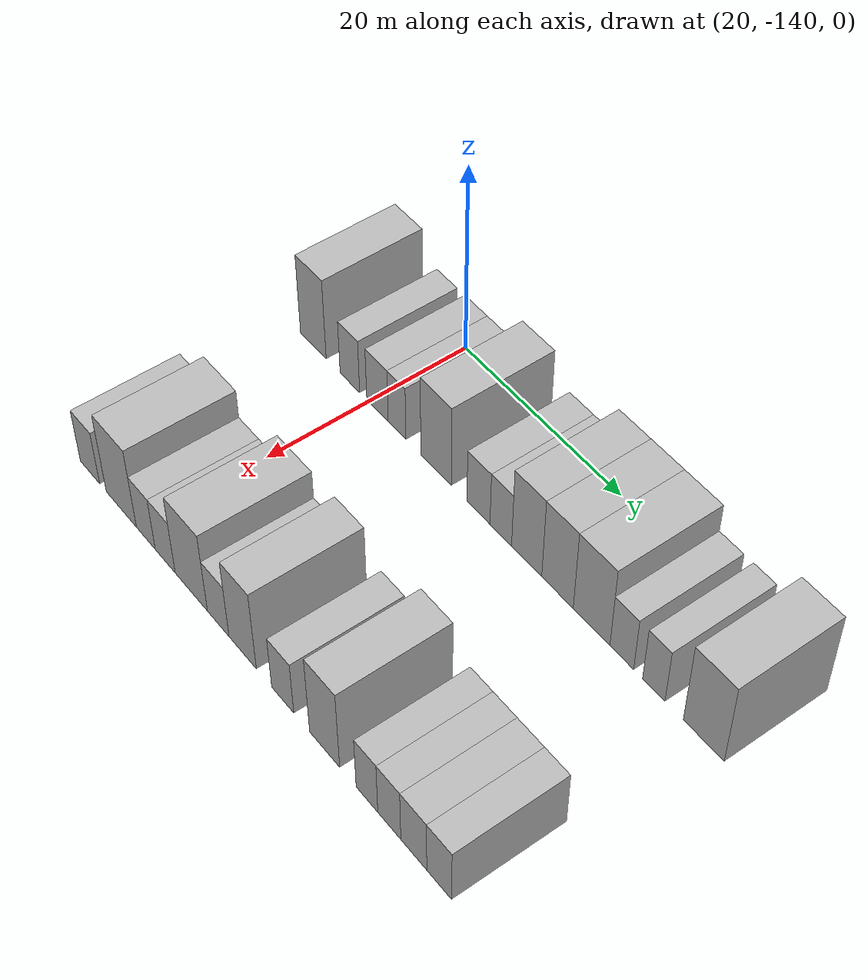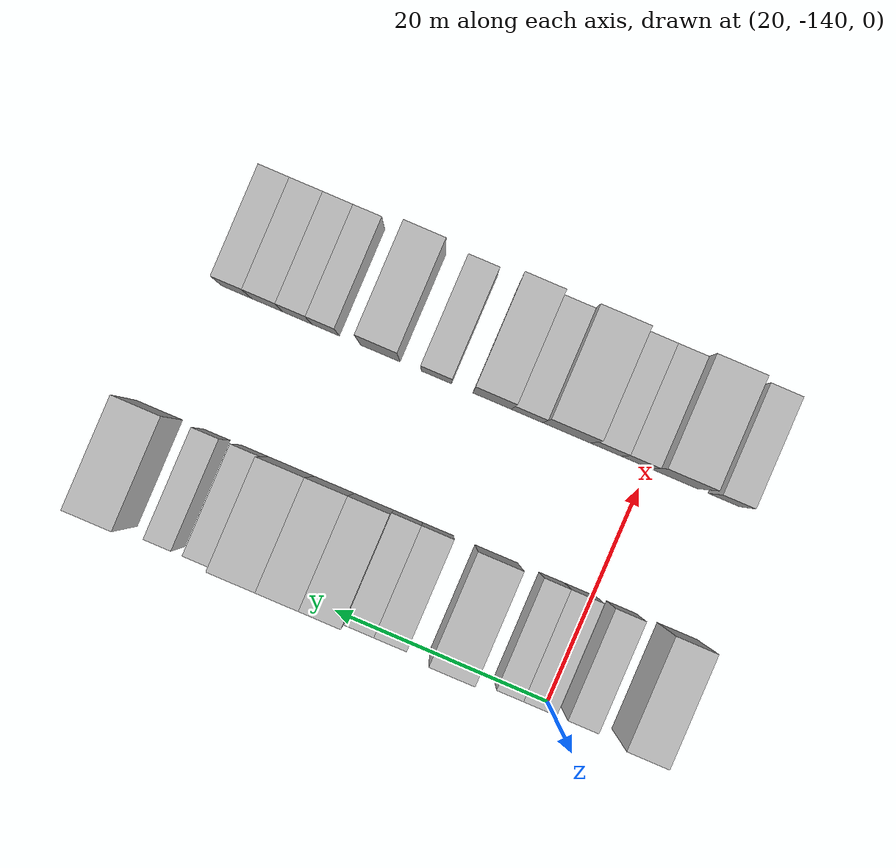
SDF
<sdf version="1.6">
 <world name="default">
  <model name="building_16">
   <static>1</static>
   <pose>25.0000 -147.8683 0 0.000000 0.000000 0.000000</pose>
   <link name="link">
    <pose>0 0 4.50 0 0 0</pose>
    <collision name="collision"><geometry><box><size>10.0000 3.7314 9.0000</size></box></geometry></collision>
    <visual name="visual">
     <cast_shadows>0</cast_shadows>
     <geometry><box><size>10.0000 3.7314 9.0000</size></box></geometry>
     <material>
      <script>
       <uri>model://HANNAS_wall/materials/scripts</uri>
       <uri>model://HANNAS_wall/materials/textures</uri>
       <name>vrc/HANNAS_wall</name>
      </script>
     </material>
    </visual>
   </link>
  </model>
  <model name="building_17">
   <static>1</static>
   <pose>25.0000 -142.6221 0 0.000000 0.000000 0.000000</pose>
   <link name="link">
    <pose>0 0 3.00 0 0 0</pose>
    <collision name="collision"><geometry><box><size>10.0000 2.7608 6.0000</size></box></geometry></collision>
    <visual name="visual">
     <cast_shadows>0</cast_shadows>
     <geometry><box><size>10.0000 2.7608 6.0000</size></box></geometry>
     <material>
      <script>
       <uri>model://HANNAS_wall/materials/scripts</uri>
       <uri>model://HANNAS_wall/materials/textures</uri>
       <name>vrc/HANNAS_wall</name>
      </script>
     </material>
    </visual>
   </link>
  </model>
  <model name="building_18">
   <static>1</static>
   <pose>25.0000 -138.7657 0 0.000000 0.000000 0.000000</pose>
   <link name="link">
    <pose>0 0 3.00 0 0 0</pose>
    <collision name="collision"><geometry><box><size>10.0000 2.9520 6.0000</size></box></geometry></collision>
    <visual name="visual">
     <cast_shadows>0</cast_shadows>
     <geometry><box><size>10.0000 2.9520 6.0000</size></box></geometry>
     <material>
      <script>
       <uri>model://HANNAS_wall/materials/scripts</uri>
       <uri>model://HANNAS_wall/materials/textures</uri>
       <name>vrc/HANNAS_wall</name>
      </script>
     </material>
    </visual>
   </link>
  </model>
  <model name="building_19">
   <static>1</static>
   <pose>25.0000 -136.0867 0 0.000000 0.000000 0.000000</pose>
   <link name="link">
    <pose>0 0 3.00 0 0 0</pose>
    <collision name="collision"><geometry><box><size>10.0000 2.4060 6.0000</size></box></geometry></collision>
    <visual name="visual">
     <cast_shadows>0</cast_shadows>
     <geometry><box><size>10.0000 2.4060 6.0000</size></box></geometry>
     <material>
      <script>
       <uri>model://HANNAS_wall/materials/scripts</uri>
       <uri>model://HANNAS_wall/materials/textures</uri>
       <name>vrc/HANNAS_wall</name>
      </script>
     </material>
    </visual>
   </link>
  </model>
  <model name="building_20">
   <static>1</static>
   <pose>25.0000 -130.8775 0 0.000000 0.000000 0.000000</pose>
   <link name="link">
    <pose>0 0 4.50 0 0 0</pose>
    <collision name="collision"><geometry><box><size>10.0000 4.0125 9.0000</size></box></geometry></collision>
    <visual name="visual">
     <cast_shadows>0</cast_shadows>
     <geometry><box><size>10.0000 4.0125 9.0000</size></box></geometry>
     <material>
      <script>
       <uri>model://HANNAS_wall/materials/scripts</uri>
       <uri>model://HANNAS_wall/materials/textures</uri>
       <name>vrc/HANNAS_wall</name>
      </script>
     </material>
    </visual>
   </link>
  </model>
  <model name="building_21">
   <static>1</static>
   <pose>25.0000 -125.4084 0 0.000000 0.000000 0.000000</pose>
   <link name="link">
    <pose>0 0 3.00 0 0 0</pose>
    <collision name="collision"><geometry><box><size>10.0000 2.9255 6.0000</size></box></geometry></collision>
    <visual name="visual">
     <cast_shadows>0</cast_shadows>
     <geometry><box><size>10.0000 2.9255 6.0000</size></box></geometry>
     <material>
      <script>
       <uri>model://HANNAS_wall/materials/scripts</uri>
       <uri>model://HANNAS_wall/materials/textures</uri>
       <name>vrc/HANNAS_wall</name>
      </script>
     </material>
    </visual>
   </link>
  </model>
  <model name="building_22">
   <static>1</static>
   <pose>25.0000 -122.5982 0 0.000000 0.000000 0.000000</pose>
   <link name="link">
    <pose>0 0 3.00 0 0 0</pose>
    <collision name="collision"><geometry><box><size>10.0000 2.6951 6.0000</size></box></geometry></collision>
    <visual name="visual">
     <cast_shadows>0</cast_shadows>
     <geometry><box><size>10.0000 2.6951 6.0000</size></box></geometry>
     <material>
      <script>
       <uri>model://HANNAS_wall/materials/scripts</uri>
       <uri>model://HANNAS_wall/materials/textures</uri>
       <name>vrc/HANNAS_wall</name>
      </script>
     </material>
    </visual>
   </link>
  </model>
  <model name="building_23">
   <static>1</static>
   <pose>25.0000 -119.4095 0 0.000000 0.000000 0.000000</pose>
   <link name="link">
    <pose>0 0 4.50 0 0 0</pose>
    <collision name="collision"><geometry><box><size>10.0000 3.6823 9.0000</size></box></geometry></collision>
    <visual name="visual">
     <cast_shadows>0</cast_shadows>
     <geometry><box><size>10.0000 3.6823 9.0000</size></box></geometry>
     <material>
      <script>
       <uri>model://HANNAS_wall/materials/scripts</uri>
       <uri>model://HANNAS_wall/materials/textures</uri>
       <name>vrc/HANNAS_wall</name>
      </script>
     </material>
    </visual>
   </link>
  </model>
  <model name="building_24">
   <static>1</static>
   <pose>25.0000 -115.6903 0 0.000000 0.000000 0.000000</pose>
   <link name="link">
    <pose>0 0 4.50 0 0 0</pose>
    <collision name="collision"><geometry><box><size>10.0000 3.7561 9.0000</size></box></geometry></collision>
    <visual name="visual">
     <cast_shadows>0</cast_shadows>
     <geometry><box><size>10.0000 3.7561 9.0000</size></box></geometry>
     <material>
      <script>
       <uri>model://HANNAS_wall/materials/scripts</uri>
       <uri>model://HANNAS_wall/materials/textures</uri>
       <name>vrc/HANNAS_wall</name>
      </script>
     </material>
    </visual>
   </link>
  </model>
  <model name="building_25">
   <static>1</static>
   <pose>25.0000 -111.6862 0 0.000000 0.000000 0.000000</pose>
   <link name="link">
    <pose>0 0 4.50 0 0 0</pose>
    <collision name="collision"><geometry><box><size>10.0000 4.2523 9.0000</size></box></geometry></collision>
    <visual name="visual">
     <cast_shadows>0</cast_shadows>
     <geometry><box><size>10.0000 4.2523 9.0000</size></box></geometry>
     <material>
      <script>
       <uri>model://HANNAS_wall/materials/scripts</uri>
       <uri>model://HANNAS_wall/materials/textures</uri>
       <name>vrc/HANNAS_wall</name>
      </script>
     </material>
    </visual>
   </link>
  </model>
  <model name="building_26">
   <static>1</static>
   <pose>25.0000 -108.2138 0 0.000000 0.000000 0.000000</pose>
   <link name="link">
    <pose>0 0 3.00 0 0 0</pose>
    <collision name="collision"><geometry><box><size>10.0000 2.6924 6.0000</size></box></geometry></collision>
    <visual name="visual">
     <cast_shadows>0</cast_shadows>
     <geometry><box><size>10.0000 2.6924 6.0000</size></box></geometry>
     <material>
      <script>
       <uri>model://HANNAS_wall/materials/scripts</uri>
       <uri>model://HANNAS_wall/materials/textures</uri>
       <name>vrc/HANNAS_wall</name>
      </script>
     </material>
    </visual>
   </link>
  </model>
  <model name="building_27">
   <static>1</static>
   <pose>25.0000 -104.6309 0 0.000000 0.000000 0.000000</pose>
   <link name="link">
    <pose>0 0 3.00 0 0 0</pose>
    <collision name="collision"><geometry><box><size>10.0000 2.4735 6.0000</size></box></geometry></collision>
    <visual name="visual">
     <cast_shadows>0</cast_shadows>
     <geometry><box><size>10.0000 2.4735 6.0000</size></box></geometry>
     <material>
      <script>
       <uri>model://HANNAS_wall/materials/scripts</uri>
       <uri>model://HANNAS_wall/materials/textures</uri>
       <name>vrc/HANNAS_wall</name>
      </script>
     </material>
    </visual>
   </link>
  </model>
  <model name="building_28">
   <static>1</static>
   <pose>25.0000 -99.2087 0 0.000000 0.000000 0.000000</pose>
   <link name="link">
    <pose>0 0 4.50 0 0 0</pose>
    <collision name="collision"><geometry><box><size>10.0000 4.3710 9.0000</size></box></geometry></collision>
    <visual name="visual">
     <cast_shadows>0</cast_shadows>
     <geometry><box><size>10.0000 4.3710 9.0000</size></box></geometry>
     <material>
      <script>
       <uri>model://HANNAS_wall/materials/scripts</uri>
       <uri>model://HANNAS_wall/materials/textures</uri>
       <name>vrc/HANNAS_wall</name>
      </script>
     </material>
    </visual>
   </link>
  </model>
  <model name="building_117">
   <static>1</static>
   <pose>47.0000 -147.1453 0 0.000000 0.000000 0.000000</pose>
   <link name="link">
    <pose>0 0 3.00 0 0 0</pose>
    <collision name="collision"><geometry><box><size>10.0000 2.9470 6.0000</size></box></geometry></collision>
    <visual name="visual">
     <cast_shadows>0</cast_shadows>
     <geometry><box><size>10.0000 2.9470 6.0000</size></box></geometry>
     <material>
      <script>
       <uri>model://HANNAS_wall/materials/scripts</uri>
       <uri>model://HANNAS_wall/materials/textures</uri>
       <name>vrc/HANNAS_wall</name>
      </script>
     </material>
    </visual>
   </link>
  </model>
  <model name="building_118">
   <static>1</static>
   <pose>47.0000 -142.4270 0 0.000000 0.000000 0.000000</pose>
   <link name="link">
    <pose>0 0 4.50 0 0 0</pose>
    <collision name="collision"><geometry><box><size>10.0000 4.4896 9.0000</size></box></geometry></collision>
    <visual name="visual">
     <cast_shadows>0</cast_shadows>
     <geometry><box><size>10.0000 4.4896 9.0000</size></box></geometry>
     <material>
      <script>
       <uri>model://HANNAS_wall/materials/scripts</uri>
       <uri>model://HANNAS_wall/materials/textures</uri>
       <name>vrc/HANNAS_wall</name>
      </script>
     </material>
    </visual>
   </link>
  </model>
  <model name="building_119">
   <static>1</static>
   <pose>47.0000 -138.8107 0 0.000000 0.000000 0.000000</pose>
   <link name="link">
    <pose>0 0 3.00 0 0 0</pose>
    <collision name="collision"><geometry><box><size>10.0000 2.7430 6.0000</size></box></geometry></collision>
    <visual name="visual">
     <cast_shadows>0</cast_shadows>
     <geometry><box><size>10.0000 2.7430 6.0000</size></box></geometry>
     <material>
      <script>
       <uri>model://HANNAS_wall/materials/scripts</uri>
       <uri>model://HANNAS_wall/materials/textures</uri>
       <name>vrc/HANNAS_wall</name>
      </script>
     </material>
    </visual>
   </link>
  </model>
  <model name="building_120">
   <static>1</static>
   <pose>47.0000 -136.0185 0 0.000000 0.000000 0.000000</pose>
   <link name="link">
    <pose>0 0 3.00 0 0 0</pose>
    <collision name="collision"><geometry><box><size>10.0000 2.8412 6.0000</size></box></geometry></collision>
    <visual name="visual">
     <cast_shadows>0</cast_shadows>
     <geometry><box><size>10.0000 2.8412 6.0000</size></box></geometry>
     <material>
      <script>
       <uri>model://HANNAS_wall/materials/scripts</uri>
       <uri>model://HANNAS_wall/materials/textures</uri>
       <name>vrc/HANNAS_wall</name>
      </script>
     </material>
    </visual>
   </link>
  </model>
  <model name="building_121">
   <static>1</static>
   <pose>47.0000 -132.3555 0 0.000000 0.000000 0.000000</pose>
   <link name="link">
    <pose>0 0 4.50 0 0 0</pose>
    <collision name="collision"><geometry><box><size>10.0000 4.4849 9.0000</size></box></geometry></collision>
    <visual name="visual">
     <cast_shadows>0</cast_shadows>
     <geometry><box><size>10.0000 4.4849 9.0000</size></box></geometry>
     <material>
      <script>
       <uri>model://HANNAS_wall/materials/scripts</uri>
       <uri>model://HANNAS_wall/materials/textures</uri>
       <name>vrc/HANNAS_wall</name>
      </script>
     </material>
    </visual>
   </link>
  </model>
  <model name="building_122">
   <static>1</static>
   <pose>47.0000 -128.6467 0 0.000000 0.000000 0.000000</pose>
   <link name="link">
    <pose>0 0 3.00 0 0 0</pose>
    <collision name="collision"><geometry><box><size>10.0000 2.9327 6.0000</size></box></geometry></collision>
    <visual name="visual">
     <cast_shadows>0</cast_shadows>
     <geometry><box><size>10.0000 2.9327 6.0000</size></box></geometry>
     <material>
      <script>
       <uri>model://HANNAS_wall/materials/scripts</uri>
       <uri>model://HANNAS_wall/materials/textures</uri>
       <name>vrc/HANNAS_wall</name>
      </script>
     </material>
    </visual>
   </link>
  </model>
  <model name="building_123">
   <static>1</static>
   <pose>47.0000 -125.3660 0 0.000000 0.000000 0.000000</pose>
   <link name="link">
    <pose>0 0 4.50 0 0 0</pose>
    <collision name="collision"><geometry><box><size>10.0000 3.6287 9.0000</size></box></geometry></collision>
    <visual name="visual">
     <cast_shadows>0</cast_shadows>
     <geometry><box><size>10.0000 3.6287 9.0000</size></box></geometry>
     <material>
      <script>
       <uri>model://HANNAS_wall/materials/scripts</uri>
       <uri>model://HANNAS_wall/materials/textures</uri>
       <name>vrc/HANNAS_wall</name>
      </script>
     </material>
    </visual>
   </link>
  </model>
  <model name="building_124">
   <static>1</static>
   <pose>47.0000 -120.1359 0 0.000000 0.000000 0.000000</pose>
   <link name="link">
    <pose>0 0 3.00 0 0 0</pose>
    <collision name="collision"><geometry><box><size>10.0000 2.8315 6.0000</size></box></geometry></collision>
    <visual name="visual">
     <cast_shadows>0</cast_shadows>
     <geometry><box><size>10.0000 2.8315 6.0000</size></box></geometry>
     <material>
      <script>
       <uri>model://HANNAS_wall/materials/scripts</uri>
       <uri>model://HANNAS_wall/materials/textures</uri>
       <name>vrc/HANNAS_wall</name>
      </script>
     </material>
    </visual>
   </link>
  </model>
  <model name="building_125">
   <static>1</static>
   <pose>47.0000 -114.8649 0 0.000000 0.000000 0.000000</pose>
   <link name="link">
    <pose>0 0 4.50 0 0 0</pose>
    <collision name="collision"><geometry><box><size>10.0000 3.7105 9.0000</size></box></geometry></collision>
    <visual name="visual">
     <cast_shadows>0</cast_shadows>
     <geometry><box><size>10.0000 3.7105 9.0000</size></box></geometry>
     <material>
      <script>
       <uri>model://HANNAS_wall/materials/scripts</uri>
       <uri>model://HANNAS_wall/materials/textures</uri>
       <name>vrc/HANNAS_wall</name>
      </script>
     </material>
    </visual>
   </link>
  </model>
  <model name="building_126">
   <static>1</static>
   <pose>47.0000 -109.7215 0 0.000000 0.000000 0.000000</pose>
   <link name="link">
    <pose>0 0 3.00 0 0 0</pose>
    <collision name="collision"><geometry><box><size>10.0000 2.5764 6.0000</size></box></geometry></collision>
    <visual name="visual">
     <cast_shadows>0</cast_shadows>
     <geometry><box><size>10.0000 2.5764 6.0000</size></box></geometry>
     <material>
      <script>
       <uri>model://HANNAS_wall/materials/scripts</uri>
       <uri>model://HANNAS_wall/materials/textures</uri>
       <name>vrc/HANNAS_wall</name>
      </script>
     </material>
    </visual>
   </link>
  </model>
  <model name="building_127">
   <static>1</static>
   <pose>47.0000 -107.0878 0 0.000000 0.000000 0.000000</pose>
   <link name="link">
    <pose>0 0 3.00 0 0 0</pose>
    <collision name="collision"><geometry><box><size>10.0000 2.6909 6.0000</size></box></geometry></collision>
    <visual name="visual">
     <cast_shadows>0</cast_shadows>
     <geometry><box><size>10.0000 2.6909 6.0000</size></box></geometry>
     <material>
      <script>
       <uri>model://HANNAS_wall/materials/scripts</uri>
       <uri>model://HANNAS_wall/materials/textures</uri>
       <name>vrc/HANNAS_wall</name>
      </script>
     </material>
    </visual>
   </link>
  </model>
  <model name="building_128">
   <static>1</static>
   <pose>47.0000 -104.2547 0 0.000000 0.000000 0.000000</pose>
   <link name="link">
    <pose>0 0 3.00 0 0 0</pose>
    <collision name="collision"><geometry><box><size>10.0000 2.9753 6.0000</size></box></geometry></collision>
    <visual name="visual">
     <cast_shadows>0</cast_shadows>
     <geometry><box><size>10.0000 2.9753 6.0000</size></box></geometry>
     <material>
      <script>
       <uri>model://HANNAS_wall/materials/scripts</uri>
       <uri>model://HANNAS_wall/materials/textures</uri>
       <name>vrc/HANNAS_wall</name>
      </script>
     </material>
    </visual>
   </link>
  </model>
  <model name="building_129">
   <static>1</static>
   <pose>47.0000 -101.3745 0 0.000000 0.000000 0.000000</pose>
   <link name="link">
    <pose>0 0 3.00 0 0 0</pose>
    <collision name="collision"><geometry><box><size>10.0000 2.7851 6.0000</size></box></geometry></collision>
    <visual name="visual">
     <cast_shadows>0</cast_shadows>
     <geometry><box><size>10.0000 2.7851 6.0000</size></box></geometry>
     <material>
      <script>
       <uri>model://HANNAS_wall/materials/scripts</uri>
       <uri>model://HANNAS_wall/materials/textures</uri>
       <name>vrc/HANNAS_wall</name>
      </script>
     </material>
    </visual>
   </link>
  </model>
 </world>
</sdf>
